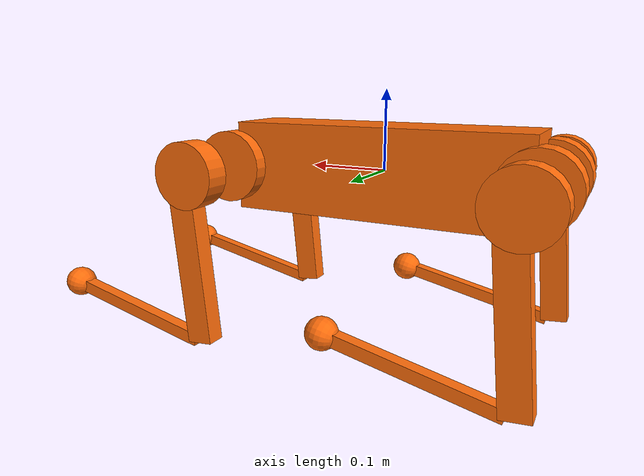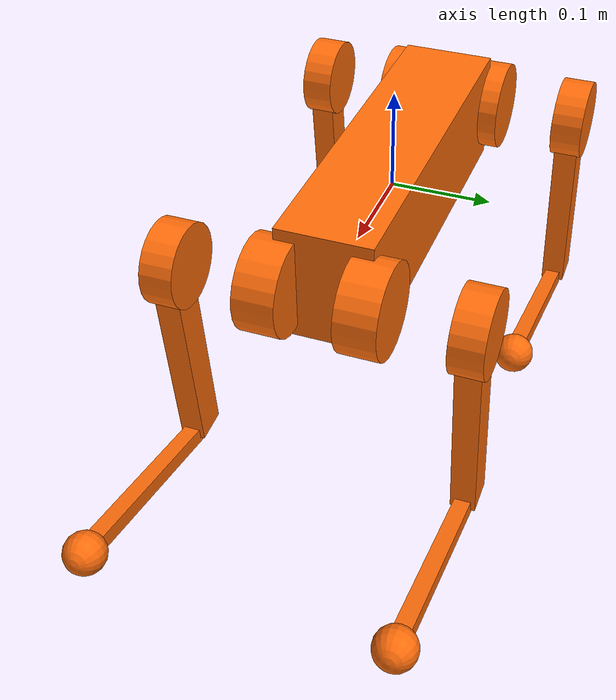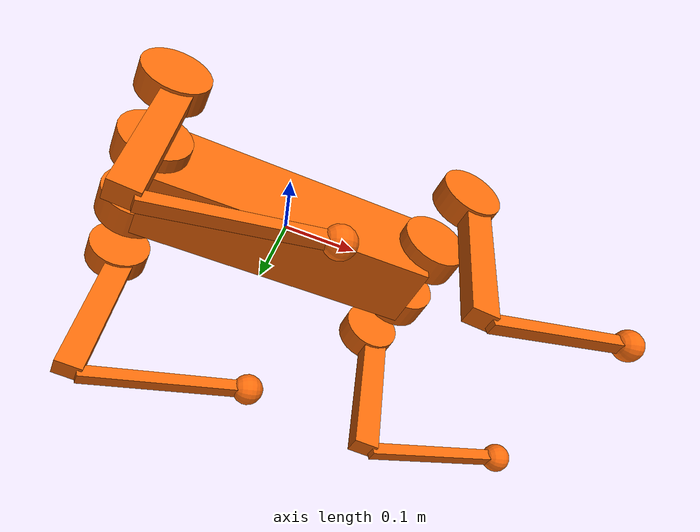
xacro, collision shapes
<?xml version="1.0"?>
<robot xmlns:xacro="http://www.ros.org/wiki/xacro" name="robot">
  <xacro:arg name="robot_type" default="go2"/>
  <xacro:arg name="power_limit" default="4"/>
  <xacro:arg name="contact_threshold" default="30"/>
  <xacro:arg name="domain_id" default="0"/>
  <xacro:arg name="network_interface" default=""/>
  <xacro:arg name="state_timeout" default="0.10"/>
  <xacro:arg name="controller_command_timeout" default="0.05"/>
  <xacro:arg name="command_stream_rate" default="500.0"/>
  <xacro:arg name="startup_timeout" default="5.0"/>
  <xacro:arg name="arm_ramp_duration" default="2.0"/>
  <xacro:arg name="max_torque" default="30.0"/>
  <xacro:arg name="max_kp" default="80.0"/>
  <xacro:arg name="max_kd" default="10.0"/>
  <xacro:arg name="stand_duration" default="8.0"/>
  <xacro:arg name="stand_kp" default="50.0"/>
  <xacro:arg name="stand_hold_kp" default="70.0"/>
  <xacro:arg name="stand_kd" default="5.0"/>
  <xacro:arg name="stand_crouch_hfe_target" default="0.90"/>
  <xacro:arg name="stand_crouch_kfe_target" default="-1.80"/>
  <xacro:arg name="stand_crouch_fraction" default="0.45"/>
  <xacro:arg name="stand_hfe_target" default="0.60"/>
  <xacro:arg name="stand_kfe_target" default="-1.20"/>
  <xacro:arg name="stand_position_tolerance" default="0.18"/>
  <xacro:arg name="stand_velocity_tolerance" default="0.35"/>
  <xacro:arg name="stand_settle_duration" default="2.0"/>
  <xacro:arg name="damping_kd" default="3.0"/>
  <xacro:arg name="release_mode_on_arm" default="false"/>
  <xacro:arg name="require_motion_mode_check" default="true"/>

  <xacro:include filename="$(find legged_unitree_description)/urdf/common/materials.xacro"/>
  <xacro:include filename="$(find legged_unitree_description)/urdf/common/leg.xacro"/>
  <xacro:include filename="$(find legged_unitree_description)/urdf/common/imu.xacro"/>
  <xacro:include filename="$(find legged_unitree_description)/urdf/common/ros2_control_unitree.xacro"/>
  <xacro:include filename="$(find legged_unitree_description)/urdf/$(arg robot_type)/const.xacro"/>

  <xacro:property name="mesh_path" value="file://$(find legged_unitree_description)/meshes/$(arg robot_type)"/>

  <link name="base">
    <visual>
      <origin rpy="0 0 0" xyz="0 0 0"/>
      <geometry>
        <mesh filename="${mesh_path}/trunk.dae" scale="1 1 1"/>
      </geometry>
      <material name="orange"/>
    </visual>
    <collision>
      <origin rpy="0 0 0" xyz="0 0 0"/>
      <geometry>
        <box size="${trunk_length} ${trunk_width} ${trunk_height}"/>
      </geometry>
    </collision>
    <inertial>
      <origin rpy="0 0 0" xyz="${trunk_com_x} ${trunk_com_y} ${trunk_com_z}"/>
      <mass value="${trunk_mass}"/>
      <inertia
        ixx="${trunk_ixx}" ixy="${trunk_ixy}" ixz="${trunk_ixz}"
        iyy="${trunk_iyy}" iyz="${trunk_iyz}" izz="${trunk_izz}"/>
    </inertial>
  </link>

  <xacro:IMU connected_to="base" imu_name="unitree_imu" xyz="0 0 0" rpy="0 0 0"/>

  <xacro:leg prefix="LF" mesh_path="${mesh_path}" mirror="1" mirror_dae="True" front_hind="1" front_hind_dae="True">
    <origin rpy="0 0 0" xyz="${leg_offset_x} ${leg_offset_y} 0"/>
  </xacro:leg>

  <xacro:leg prefix="LH" mesh_path="${mesh_path}" mirror="1" mirror_dae="True" front_hind="-1" front_hind_dae="False">
    <origin rpy="0 0 0" xyz="${-leg_offset_x} ${leg_offset_y} 0"/>
  </xacro:leg>

  <xacro:leg prefix="RF" mesh_path="${mesh_path}" mirror="-1" mirror_dae="False" front_hind="1" front_hind_dae="True">
    <origin rpy="0 0 0" xyz="${leg_offset_x} ${-leg_offset_y} 0"/>
  </xacro:leg>

  <xacro:leg prefix="RH" mesh_path="${mesh_path}" mirror="-1" mirror_dae="False" front_hind="-1" front_hind_dae="False">
    <origin rpy="0 0 0" xyz="${-leg_offset_x} ${-leg_offset_y} 0"/>
  </xacro:leg>

  <xacro:unitree_ros2_control
      robot_type="$(arg robot_type)"
      power_limit="$(arg power_limit)"
      contact_threshold="$(arg contact_threshold)"
      domain_id="$(arg domain_id)"
      network_interface="$(arg network_interface)"
      state_timeout="$(arg state_timeout)"
      controller_command_timeout="$(arg controller_command_timeout)"
      command_stream_rate="$(arg command_stream_rate)"
      startup_timeout="$(arg startup_timeout)"
      arm_ramp_duration="$(arg arm_ramp_duration)"
      max_torque="$(arg max_torque)"
      max_kp="$(arg max_kp)"
      max_kd="$(arg max_kd)"
      stand_duration="$(arg stand_duration)"
      stand_kp="$(arg stand_kp)"
      stand_hold_kp="$(arg stand_hold_kp)"
      stand_kd="$(arg stand_kd)"
      stand_crouch_hfe_target="$(arg stand_crouch_hfe_target)"
      stand_crouch_kfe_target="$(arg stand_crouch_kfe_target)"
      stand_crouch_fraction="$(arg stand_crouch_fraction)"
      stand_hfe_target="$(arg stand_hfe_target)"
      stand_kfe_target="$(arg stand_kfe_target)"
      stand_position_tolerance="$(arg stand_position_tolerance)"
      stand_velocity_tolerance="$(arg stand_velocity_tolerance)"
      stand_settle_duration="$(arg stand_settle_duration)"
      damping_kd="$(arg damping_kd)"
      release_mode_on_arm="$(arg release_mode_on_arm)"
      require_motion_mode_check="$(arg require_motion_mode_check)"/>
</robot>

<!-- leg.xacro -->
<robot xmlns:xacro="http://www.ros.org/wiki/xacro">

    <xacro:include filename="$(find legged_unitree_description)/urdf/common/transmission.xacro"/>

    <xacro:macro name="leg" params="prefix mesh_path mirror mirror_dae front_hind front_hind_dae *origin">

        <joint name="${prefix}_HAA" type="revolute">
            <xacro:insert_block name="origin"/>
            <parent link="base"/>
            <child link="${prefix}_hip"/>
            <axis xyz="1 0 0"/>
            <dynamics damping="${damping}" friction="${friction}"/>
            <xacro:if value="${(mirror_dae == True)}">
                <limit effort="${hip_torque_max}" velocity="${hip_velocity_max}" lower="${hip_position_min}"
                       upper="${hip_position_max}"/>
            </xacro:if>
            <xacro:if value="${(mirror_dae == False)}">
                <limit effort="${hip_torque_max}" velocity="${hip_velocity_max}" lower="${-hip_position_max}"
                       upper="${-hip_position_min}"/>
            </xacro:if>
        </joint>

        <link name="${prefix}_hip">
            <visual>
                <xacro:if value="${(mirror_dae == True) and (front_hind_dae == True)}">
                    <origin rpy="0 0 0" xyz="0 0 0"/>
                </xacro:if>
                <xacro:if value="${(mirror_dae == False) and (front_hind_dae == True)}">
                    <origin rpy="${pi} 0 0" xyz="0 0 0"/>
                </xacro:if>
                <xacro:if value="${(mirror_dae == True) and (front_hind_dae == False)}">
                    <origin rpy="0 ${pi} 0" xyz="0 0 0"/>
                </xacro:if>
                <xacro:if value="${(mirror_dae == False) and (front_hind_dae == False)}">
                    <origin rpy="${pi} ${pi} 0" xyz="0 0 0"/>
                </xacro:if>
                <geometry>
                    <mesh filename="${mesh_path}/hip.dae"
                          scale="1 1 1"/>
                </geometry>
                <material name="orange"/>
            </visual>
            <collision>
                <origin rpy="${pi/2.0} 0 0" xyz="0 0 0"/>
                <geometry>
                    <cylinder length="${hip_length}" radius="${hip_radius}"/>
                </geometry>
            </collision>
            <inertial>
                <origin rpy="0 0 0" xyz="${hip_com_x*front_hind} ${hip_com_y*mirror} ${hip_com_z}"/>
                <mass value="${hip_mass}"/>
                <inertia
                        ixx="${hip_ixx}" ixy="${hip_ixy*mirror*front_hind}" ixz="${hip_ixz*front_hind}"
                        iyy="${hip_iyy}" iyz="${hip_iyz*mirror}"
                        izz="${hip_izz}"/>
            </inertial>
        </link>

        <joint name="${prefix}_HFE" type="revolute">
            <origin rpy="0 0 0" xyz="0 ${thigh_offset*mirror} 0"/>
            <parent link="${prefix}_hip"/>
            <child link="${prefix}_thigh"/>
            <axis xyz="0 1 0"/>
            <dynamics damping="${damping}" friction="${friction}"/>
            <limit effort="${thigh_torque_max}" velocity="${thigh_velocity_max}" lower="${thigh_position_min}"
                   upper="${thigh_position_max}"/>
        </joint>

        <link name="${prefix}_thigh">
            <visual>
                <origin rpy="0 0 0" xyz="0 0 0"/>
                <geometry>
                    <xacro:if value="${mirror_dae == True}">
                        <mesh filename="${mesh_path}/thigh.dae"
                              scale="1 1 1"/>
                    </xacro:if>
                    <xacro:if value="${mirror_dae == False}">
                        <mesh filename="${mesh_path}/thigh_mirror.dae"
                              scale="1 1 1"/>
                    </xacro:if>
                </geometry>
                <material name="orange"/>
            </visual>
            <collision>
                <origin rpy="0 ${pi/2.0+0.1} 0" xyz="${thigh_x_offset} 0 ${-thigh_length/2.0}"/>
                <geometry>
                    <box size="${thigh_length} ${thigh_width} ${thigh_height}"/>
                </geometry>
            </collision>
            <collision>
                <origin rpy="${pi/2.0} 0 0" xyz="0 ${mirror*thigh_shoulder_y_offset} 0"/>
                <geometry>
                    <cylinder length="${thigh_shoulder_length}" radius="${thigh_shoulder_radius}"/>
                </geometry>
            </collision>
            <inertial>
                <origin rpy="0 0 0" xyz="${thigh_com_x} ${thigh_com_y*mirror} ${thigh_com_z}"/>
                <mass value="${thigh_mass}"/>
                <inertia
                        ixx="${thigh_ixx}" ixy="${thigh_ixy*mirror}" ixz="${thigh_ixz}"
                        iyy="${thigh_iyy}" iyz="${thigh_iyz*mirror}"
                        izz="${thigh_izz}"/>
            </inertial>
        </link>

        <joint name="${prefix}_KFE" type="revolute">
            <origin rpy="0 0 0" xyz="0 0 ${-thigh_length}"/>
            <parent link="${prefix}_thigh"/>
            <child link="${prefix}_calf"/>
            <axis xyz="0 1 0"/>
            <dynamics damping="${damping}" friction="${friction}"/>
            <limit effort="${calf_torque_max}" velocity="${calf_velocity_max}" lower="${calf_position_min}" upper="${calf_position_max}"/>
        </joint>

        <link name="${prefix}_calf">
            <visual>
                <origin rpy="0 0 0" xyz="0 0 0"/>
                <geometry>
                    <mesh filename="${mesh_path}/calf.dae"
                          scale="1 1 1"/>
                </geometry>
                <material name="orange"/>
            </visual>
            <collision>
                <origin rpy="0 ${pi/2.0} 0" xyz="${calf_x_offset} 0 ${-calf_length/2.0}"/>
                <geometry>
                    <box size="${calf_length} ${calf_width} ${calf_height}"/>
                </geometry>
            </collision>
            <inertial>
                <origin rpy="0 0 0" xyz="${calf_com_x} ${calf_com_y} ${calf_com_z}"/>
                <mass value="${calf_mass}"/>
                <inertia
                        ixx="${calf_ixx}" ixy="${calf_ixy}" ixz="${calf_ixz}"
                        iyy="${calf_iyy}" iyz="${calf_iyz}"
                        izz="${calf_izz}"/>
            </inertial>
        </link>

        <joint name="${prefix}_foot_fixed" type="fixed">
            <origin rpy="0 0 0" xyz="0 0 ${-(calf_length)}"/>
            <parent link="${prefix}_calf"/>
            <child link="${prefix}_FOOT"/>
        </joint>

        <link name="${prefix}_FOOT">
            <visual>
                <origin rpy="0 0 0" xyz="0 0 0"/>
                <geometry>
                    <sphere radius="${foot_radius-0.01}"/>
                </geometry>
                <material name="orange"/>
            </visual>
            <collision name="${prefix}_foot_collision">
                <origin rpy="0 0 0" xyz="0 0 0"/>
                <geometry>
                    <sphere radius="${foot_radius}"/>
                </geometry>
            </collision>
            <inertial>
                <mass value="${foot_mass}"/>
                <inertia
                        ixx="${(2*foot_mass)/5.0*(foot_radius*foot_radius)}" ixy="0.0" ixz="0.0"
                        iyy="${(2*foot_mass)/5.0*(foot_radius*foot_radius)}" iyz="0.0"
                        izz="${(2*foot_mass)/5.0*(foot_radius*foot_radius)}"/>
            </inertial>
        </link>

        <gazebo reference="${prefix}_hip">
            <mu1>0.2</mu1>
            <mu2>0.2</mu2>
            <material>Gazebo/DarkGrey</material>
        </gazebo>
        <gazebo reference="${prefix}_thigh">
            <mu1>0.2</mu1>
            <mu2>0.2</mu2>
            <self_collide>0</self_collide>
            <material>Gazebo/DarkGrey</material>
            <kp value="1000000.0"/>
            <kd value="100.0"/>
        </gazebo>
        <gazebo reference="${prefix}_calf">
            <mu1>0.2</mu1>
            <mu2>0.2</mu2>
            <self_collide>1</self_collide>
        </gazebo>
        <gazebo reference="${prefix}_FOOT">
            <mu1>0.6</mu1>
            <mu2>0.6</mu2>
            <self_collide>1</self_collide>
            <material>Gazebo/DarkGrey</material>
            <kp value="1000000.0"/>
            <kd value="100.0"/>
        </gazebo>

    </xacro:macro>
</robot>

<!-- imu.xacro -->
<robot xmlns:xacro="http://www.ros.org/wiki/xacro" name="imu">
    <xacro:macro name="IMU" params="connected_to imu_name xyz:='0 0 0' rpy:='0 0 0' ">
        <!-- Imu is fixed to the base link -->
        <joint name="${imu_name}_joint" type="fixed">
            <origin xyz="${xyz}" rpy="${rpy}"/>
            <parent link="${connected_to}"/>
            <child link="${imu_name}"/>
        </joint>
        <!-- Imu link -->
        <link name="${imu_name}">
            <inertial>
                <mass value="0.01"/>
                <origin rpy="0 0 0" xyz="0 0 0"/>
                <inertia ixx="0.0001" ixy="0" ixz="0" iyy="0.0001" iyz="0" izz="0.0001"/>
            </inertial>
            <visual>
                <origin rpy="0 0 0" xyz="0 0 0"/>
                <geometry>
                    <box size="0.001 0.001 0.001"/>
                </geometry>
            </visual>
            <collision>
            	<origin rpy="0 0 0" xyz="0 0 0"/>
            	<geometry>
                 <box size=".001 .001 .001"/>
            	</geometry>
            </collision>
            <material name="orange">
                <color rgba="255 108 10 255"/>
            </material>
        </link>
        <gazebo reference="${imu_name}">
            <material>Gazebo/Orange</material>
        </gazebo>
        <gazebo reference="${imu_name}_joint">
            <disableFixedJointLumping>true</disableFixedJointLumping>
        </gazebo>
    </xacro:macro>
</robot>

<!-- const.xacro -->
<robot xmlns:xacro="http://www.ros.org/wiki/xacro">

    <!-- Constants for robot dimensions -->
    <xacro:property name="PI" value="3.1415926535897931"/>
    <xacro:property name="stick_mass" value="0.00001"/>

    <!-- simplified collision value -->
    <xacro:property name="trunk_width" value="0.0935"/>
    <xacro:property name="trunk_length" value="0.3762"/>
    <xacro:property name="trunk_height" value="0.114"/>
    <xacro:property name="hip_radius" value="0.046"/>
    <xacro:property name="hip_length" value="0.04"/>
    <xacro:property name="thigh_shoulder_radius" value="0.041"/>
    <xacro:property name="thigh_shoulder_length" value="0.032"/>

    <xacro:property name="thigh_width" value="0.0245"/>
    <xacro:property name="thigh_height" value="0.034"/>

    <!--add from go1 -->
    <xacro:property name="thigh_x_offset" value="0"/>
    <xacro:property name="thigh_shoulder_y_offset" value="0"/>
    <xacro:property name="calf_x_offset" value="0.0"/>

    <xacro:property name="calf_width" value="0.016"/>
    <xacro:property name="calf_height" value="0.016"/>
    <xacro:property name="foot_radius" value="0.02"/>
    <xacro:property name="stick_radius" value="0.01"/>
    <xacro:property name="stick_length" value="0.2"/>

    <!-- kinematic value -->
    <xacro:property name="thigh_offset" value="0.0955"/>
    <xacro:property name="thigh_length" value="0.213"/>
    <xacro:property name="calf_length" value="0.213"/>

    <!-- leg offset from trunk center value -->
    <xacro:property name="leg_offset_x" value="0.1934"/>
    <xacro:property name="leg_offset_y" value="0.0465"/>
    <xacro:property name="trunk_offset_z" value="0.01675"/>
    <xacro:property name="hip_offset" value="0.0955"/>

    <!-- offset of link locations (left front) -->
    <xacro:property name="hip_offset_x" value="0.1934"/>
    <xacro:property name="hip_offset_y" value="0.0465"/>
    <xacro:property name="hip_offset_z" value="0.0"/>

    <xacro:property name="thigh_offset_x" value="0"/>
    <xacro:property name="thigh_offset_y" value="0.0955"/>
    <xacro:property name="thigh_offset_z" value="0.0"/>

    <xacro:property name="calf_offset_x" value="0.0"/>
    <xacro:property name="calf_offset_y" value="0.0"/>
    <xacro:property name="calf_offset_z" value="-0.213"/>

    <!-- joint limits -->
    <xacro:property name="damping" value="0.01"/>
    <xacro:property name="friction" value="0.2"/>
    <xacro:property name="hip_position_max" value="1.0472"/>
    <xacro:property name="hip_position_min" value="-1.0472"/>
    <xacro:property name="hip_velocity_max" value="30.1"/>
    <xacro:property name="hip_torque_max" value="23.7"/>
    <xacro:property name="thigh_position_max" value="3.4907"/>
    <xacro:property name="thigh_position_min" value="-1.5708"/>
    <xacro:property name="thigh_velocity_max" value="30.1"/>
    <xacro:property name="thigh_torque_max" value="23.7"/>
    <xacro:property name="calf_position_max" value="-0.83776"/>
    <xacro:property name="calf_position_min" value="-2.7227"/>
    <xacro:property name="calf_velocity_max" value="20.06"/>
    <xacro:property name="calf_torque_max" value="35.55"/>

    <!-- dynamics inertial value -->
    <!-- trunk -->
    <xacro:property name="trunk_mass" value="6.921"/>
    <xacro:property name="trunk_com_x" value="0.021112"/>
    <xacro:property name="trunk_com_y" value="0.00"/>
    <xacro:property name="trunk_com_z" value="-0.005366"/>
    <xacro:property name="trunk_ixx" value="0.02448"/>
    <xacro:property name="trunk_ixy" value="0.00012166"/>
    <xacro:property name="trunk_ixz" value="0.0014849"/>
    <xacro:property name="trunk_iyy" value="0.098077"/>
    <xacro:property name="trunk_iyz" value="-3.12E-05"/>
    <xacro:property name="trunk_izz" value="0.107"/>

    <!-- hip (left front) -->
    <xacro:property name="hip_mass" value="0.678"/>
    <xacro:property name="hip_com_x" value="-0.0054"/>
    <xacro:property name="hip_com_y" value="0.00194"/>
    <xacro:property name="hip_com_z" value="-0.000105"/>
    <xacro:property name="hip_ixx" value="0.00048"/>
    <xacro:property name="hip_ixy" value="-3.01E-06"/>
    <xacro:property name="hip_ixz" value="1.11E-06"/>
    <xacro:property name="hip_iyy" value="0.000884"/>
    <xacro:property name="hip_iyz" value="-1.42E-06"/>
    <xacro:property name="hip_izz" value="0.000596"/>

    <!-- thigh -->
    <xacro:property name="thigh_mass" value="1.152"/>
    <xacro:property name="thigh_com_x" value="-0.00374"/>
    <xacro:property name="thigh_com_y" value="-0.0223"/>
    <xacro:property name="thigh_com_z" value="-0.0327"/>
    <xacro:property name="thigh_ixx" value="0.00584"/>
    <xacro:property name="thigh_ixy" value="8.72E-05"/>
    <xacro:property name="thigh_ixz" value="-0.000289"/>
    <xacro:property name="thigh_iyy" value="0.0058"/>
    <xacro:property name="thigh_iyz" value="0.000808"/>
    <xacro:property name="thigh_izz" value="0.00103"/>

    <!-- calf -->
    <xacro:property name="calf_mass" value="0.154"/>
    <xacro:property name="calf_com_x" value="0.00548"/>
    <xacro:property name="calf_com_y" value="-0.000975"/>
    <xacro:property name="calf_com_z" value="-0.115"/>
    <xacro:property name="calf_ixx" value="0.00108"/>
    <xacro:property name="calf_ixy" value="3.4E-07"/>
    <xacro:property name="calf_ixz" value="1.72E-05"/>
    <xacro:property name="calf_iyy" value="0.0011"/>
    <xacro:property name="calf_iyz" value="8.28E-06"/>
    <xacro:property name="calf_izz" value="3.29E-05"/>

    <!-- foot -->
    <xacro:property name="foot_mass" value="0.06"/>

</robot>
